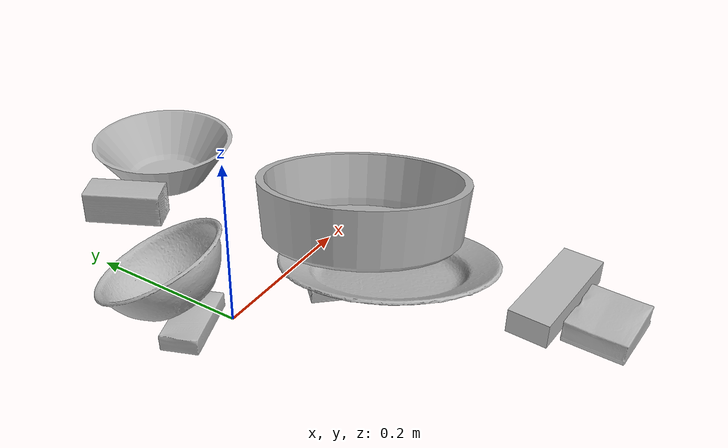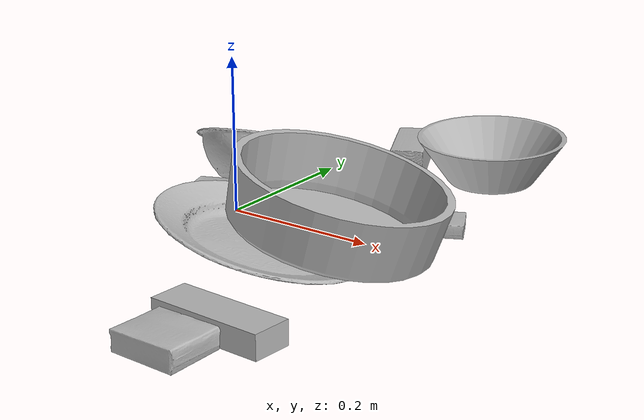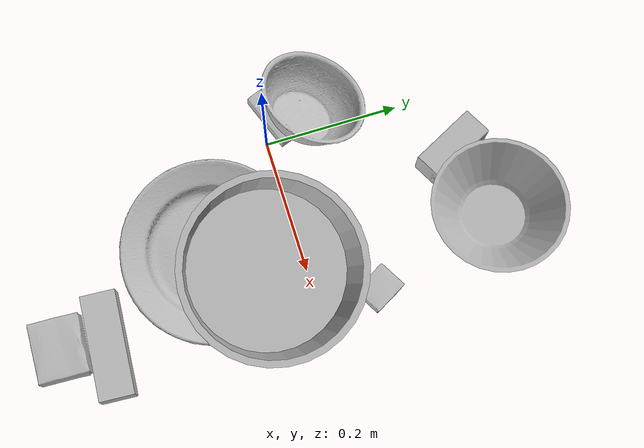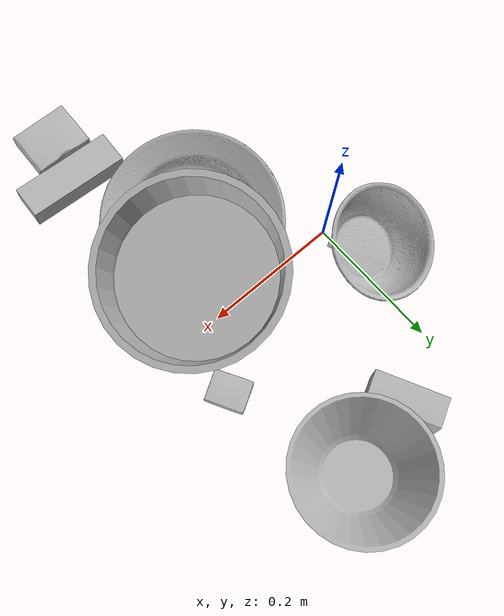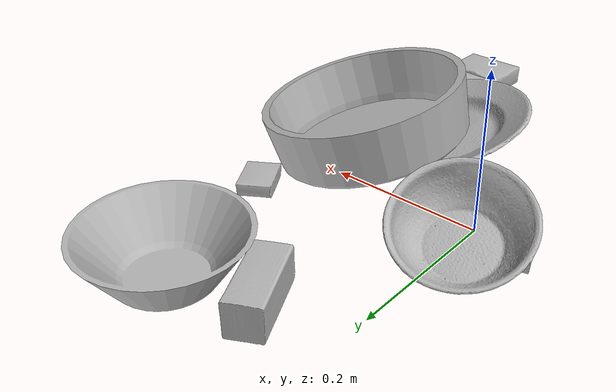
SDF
<sdf version="1.4">
  <world name="default">
    <light name="light1" type="point">
      <pose>0 0 1 0 0 0</pose>
      <diffuse>3 3 3 1</diffuse>
      <specular>3 3 3 1</specular>
    </light>
    <light name="light2" type="point">
      <pose>0 0.5 2 0 0 0</pose>
      <diffuse>1 1 1 1</diffuse>
      <specular>1 1 1 1</specular>
    </light>
    <light name="light3" type="point">
      <pose>0 0.5 2 0 0 0</pose>
      <diffuse>3 3 3 1</diffuse>
      <specular>3 3 3 1</specular>
    </light>
    <scene>
      <ambient>0.7 0.7 0.7</ambient>
    </scene>
    <model name="box1">
      <link name="link_box1">
        <collision name="default">
          <geometry>
            <mesh>
              <uri>model://jenga/collision_meshes/collision.obj</uri>
              <scale>1.0 1.0 1.0</scale>
            </mesh>
          </geometry>
          <surface>
            <friction>
              <ode>
                <mu>0.5</mu>
                <mu2>0.5</mu2>
              </ode>
            </friction>
          <contact>
        <ode>
            <max_vel>0</max_vel>
            <min_depth>0.0001</min_depth>
            <kp>1e8</kp>
        </ode>
    </contact></surface>
        </collision>
        <visual name="default">
          <geometry>
            <mesh>
              <uri>model://jenga/visual_meshes/visual.dae</uri>
              <scale>1.0 1.0 1.0</scale>
            </mesh>
          </geometry>
        </visual>
        <inertial>
          <mass>0.24226053059101105</mass>
          <pose>-2.502855807051674e-07 -0.0001025000965455547 -4.092339804628864e-05 0.0 -7.34215461761844e-07 0.0</pose>
          <inertia>
            <ixx>6.703936e-05</ixx>
            <iyy>0.0004542569</iyy>
            <izz>0.00048495785</izz>
            <ixy>0</ixy>
            <ixz>0</ixz>
            <iyz>0</iyz>
          </inertia>
        </inertial>
      </link>
      <pose>0.22472825646400452 -0.29632213711738586 0.014999997802078724 2.2484389591742613e-08 3.297395217813727e-09 3.0810055212108933</pose>
    </model>
    <model name="box11">
      <link name="link_box11">
        <collision name="default">
          <geometry>
            <mesh>
              <uri>model://sugar_box/collision_meshes/collision.obj</uri>
              <scale>0.5 0.5 0.5</scale>
            </mesh>
          </geometry>
          <surface>
            <friction>
              <ode>
                <mu>0.5</mu>
                <mu2>0.5</mu2>
              </ode>
            </friction>
          <contact>
        <ode>
            <max_vel>0</max_vel>
            <min_depth>0.0001</min_depth>
            <kp>1e8</kp>
        </ode>
    </contact></surface>
        </collision>
        <visual name="default">
          <geometry>
            <mesh>
              <uri>model://sugar_box/visual_meshes/visual.dae</uri>
              <scale>0.5 0.5 0.5</scale>
            </mesh>
          </geometry>
        </visual>
        <inertial>
          <mass>0.06204606965184212</mass>
          <pose>0.0005171863595023751 1.9245549992774613e-05 -0.00018182402709499002 -0.0004046263588767038 0.0010506634057764815 0.0026153785560837986</pose>
          <inertia>
            <ixx>1.2924152e-05</ixx>
            <iyy>4.1773517e-05</iyy>
            <izz>5.0007893e-05</izz>
            <ixy>0</ixy>
            <ixz>0</ixz>
            <iyz>0</iyz>
          </inertia>
        </inertial>
      </link>
      <pose>-0.03758595138788223 0.026692064478993416 0.011448324657976627 -0.025340878906622465 -0.012422409005348915 0.34354963422694357</pose>
    </model>
    <model name="box2">
      <link name="link_box2">
        <collision name="default">
          <geometry>
            <mesh>
              <uri>model://gelatin_box/collision_meshes/collision.obj</uri>
              <scale>1.0 1.0 1.0</scale>
            </mesh>
          </geometry>
          <surface>
            <friction>
              <ode>
                <mu>0.5</mu>
                <mu2>0.5</mu2>
              </ode>
            </friction>
          <contact>
        <ode>
            <max_vel>0</max_vel>
            <min_depth>0.0001</min_depth>
            <kp>1e8</kp>
        </ode>
    </contact></surface>
        </collision>
        <visual name="default">
          <geometry>
            <mesh>
              <uri>model://gelatin_box/visual_meshes/visual.dae</uri>
              <scale>1.0 1.0 1.0</scale>
            </mesh>
          </geometry>
        </visual>
        <inertial>
          <mass>0.13706544041633606</mass>
          <pose>0.000431961816502735 0.00011156871187267825 -0.0003640321083366871 -0.0010503719975702072 -0.0047558196187974565 0.01644056506069309</pose>
          <inertia>
            <ixx>9.675702e-05</ixx>
            <iyy>6.911303e-05</iyy>
            <izz>0.00014728573</izz>
            <ixy>0</ixy>
            <ixz>0</ixz>
            <iyz>0</iyz>
          </inertia>
        </inertial>
      </link>
      <pose>0.20929557085037231 -0.3623470664024353 0.01516831386834383 0.005597475282410152 -0.007304559306427474 1.5245077934869364</pose>
    </model>
    <model name="box21">
      <link name="link_box21">
        <collision name="default">
          <geometry>
            <mesh>
              <uri>model://pudding_box/collision_meshes/collision.obj</uri>
              <scale>0.5 0.5 0.5</scale>
            </mesh>
          </geometry>
          <surface>
            <friction>
              <ode>
                <mu>0.5</mu>
                <mu2>0.5</mu2>
              </ode>
            </friction>
          <contact>
        <ode>
            <max_vel>0</max_vel>
            <min_depth>0.0001</min_depth>
            <kp>1e8</kp>
        </ode>
    </contact></surface>
        </collision>
        <visual name="default">
          <geometry>
            <mesh>
              <uri>model://pudding_box/visual_meshes/visual.dae</uri>
              <scale>0.5 0.5 0.5</scale>
            </mesh>
          </geometry>
        </visual>
        <inertial>
          <mass>0.041178666055202484</mass>
          <pose>0.00024474109522998333 0.00040339428232982755 -0.00025944141088984907 0.005213101335872514 -0.006603799630434185 0.020079819569992066</pose>
          <inertia>
            <ixx>1.163759e-05</ixx>
            <iyy>7.8298535e-06</iyy>
            <izz>1.7185945e-05</izz>
            <ixy>0</ixy>
            <ixz>0</ixz>
            <iyz>0</iyz>
          </inertia>
        </inertial>
      </link>
      <pose>0.2572042644023895 0.0908311977982521 0.009862902574241161 0.022348725103125192 -0.011391559543945782 -2.622570440853679</pose>
    </model>
    <model name="box3">
      <link name="link_box3">
        <collision name="default">
          <geometry>
            <mesh>
              <uri>model://cracker_box/collision_meshes/collision.obj</uri>
              <scale>0.25 0.25 0.25</scale>
            </mesh>
          </geometry>
          <surface>
            <friction>
              <ode>
                <mu>0.5</mu>
                <mu2>0.5</mu2>
              </ode>
            </friction>
          <contact>
        <ode>
            <max_vel>0</max_vel>
            <min_depth>0.0001</min_depth>
            <kp>1e8</kp>
        </ode>
    </contact></surface>
        </collision>
        <visual name="default">
          <geometry>
            <mesh>
              <uri>model://cracker_box/visual_meshes/visual.dae</uri>
              <scale>0.25 0.25 0.25</scale>
            </mesh>
          </geometry>
        </visual>
        <inertial>
          <mass>0.02017100155353546</mass>
          <pose>0.00023660367878619581 6.358561222441494e-05 -0.00042573839891701937 -0.0003162077973682912 -0.011106487737506417 0.0025467945369474112</pose>
          <inertia>
            <ixx>3.2066264e-06</ixx>
            <iyy>5.2947703e-06</iyy>
            <izz>7.556123e-06</izz>
            <ixy>0</ixy>
            <ixz>0</ixz>
            <iyz>0</iyz>
          </inertia>
        </inertial>
      </link>
      <pose>0.10379170626401901 -0.06448103487491608 0.009229437448084354 0.010046772010913552 -0.006494210778686469 2.338641282360959</pose>
    </model>
    <model name="box31">
      <link name="link_box31">
        <collision name="default">
          <geometry>
            <mesh>
              <uri>model://wood_block/collision_meshes/collision.obj</uri>
              <scale>0.5 0.5 0.5</scale>
            </mesh>
          </geometry>
          <surface>
            <friction>
              <ode>
                <mu>0.5</mu>
                <mu2>0.5</mu2>
              </ode>
            </friction>
          <contact>
        <ode>
            <max_vel>0</max_vel>
            <min_depth>0.0001</min_depth>
            <kp>1e8</kp>
        </ode>
    </contact></surface>
        </collision>
        <visual name="default">
          <geometry>
            <mesh>
              <uri>model://wood_block/visual_meshes/visual.dae</uri>
              <scale>0.5 0.5 0.5</scale>
            </mesh>
          </geometry>
        </visual>
        <inertial>
          <mass>0.1962708830833435</mass>
          <pose>-2.9066577553749084e-06 -0.000285404734313488 0.00013204291462898254 -0.05220969561834339 -0.0051926963065425085 -0.006861379449261536</pose>
          <inertia>
            <ixx>6.566003e-05</ixx>
            <iyy>0.00020742005</iyy>
            <izz>0.00020664421</izz>
            <ixy>0</ixy>
            <ixz>0</ixz>
            <iyz>0</iyz>
          </inertia>
        </inertial>
      </link>
      <pose>0.09321241080760956 0.2540641129016876 0.022629277780652046 -0.0052083607729059905 0.005718744680031001 -1.0946054083836776</pose>
    </model>
    <model name="plate1">
      <link name="link_plate1">
        <collision name="default">
          <geometry>
            <mesh>
              <uri>model://plate/collision_meshes/collision.obj</uri>
              <scale>1.0 1.0 1.0</scale>
            </mesh>
          </geometry>
          <surface>
            <friction>
              <ode>
                <mu>0.5</mu>
                <mu2>0.5</mu2>
              </ode>
            </friction>
          <contact>
        <ode>
            <max_vel>0</max_vel>
            <min_depth>0.0001</min_depth>
            <kp>1e8</kp>
        </ode>
    </contact></surface>
        </collision>
        <visual name="default">
          <geometry>
            <mesh>
              <uri>model://plate/visual_meshes/visual.dae</uri>
              <scale>1.0 1.0 1.0</scale>
            </mesh>
          </geometry>
        </visual>
        <inertial>
          <mass>0.17345036566257477</mass>
          <pose>-0.0006044625188224018 0.00027825802681036294 -0.0010561991948634386 0.0022187574415082918 -0.0032254973035065115 0.4526175972404713</pose>
          <inertia>
            <ixx>0.00081140426</ixx>
            <iyy>0.0008036436</iyy>
            <izz>0.0015869853</izz>
            <ixy>0</ixy>
            <ixz>0</ixz>
            <iyz>0</iyz>
          </inertia>
        </inertial>
      </link>
      <pose>0.14242912828922272 -0.12086919695138931 0.034063249826431274 0.2547690850218972 0.049122498256464295 1.932474123634643</pose>
    </model>
    <model name="bowl1">
      <link name="link_bowl1">
        <collision name="default">
          <geometry>
            <mesh>
              <uri>model://bowl/collision_meshes/collision.obj</uri>
              <scale>1.0 1.0 1.0</scale>
            </mesh>
          </geometry>
          <surface>
            <friction>
              <ode>
                <mu>0.5</mu>
                <mu2>0.5</mu2>
              </ode>
            </friction>
          <contact>
        <ode>
            <max_vel>0</max_vel>
            <min_depth>0.0001</min_depth>
            <kp>1e8</kp>
        </ode>
    </contact></surface>
        </collision>
        <visual name="default">
          <geometry>
            <mesh>
              <uri>model://bowl/visual_meshes/visual.dae</uri>
              <scale>1.0 1.0 1.0</scale>
            </mesh>
          </geometry>
        </visual>
        <inertial>
          <mass>0.11633910983800888</mass>
          <pose>0.00020445004338398576 -0.0010302083101123571 -0.0008042659610509872 -0.01576420252076368 0.01454664289610389 0.7140315541596068</pose>
          <inertia>
            <ixx>0.0002672402</ixx>
            <iyy>0.000261269</iyy>
            <izz>0.00044958986</izz>
            <ixy>0</ixy>
            <ixz>0</ixz>
            <iyz>0</iyz>
          </inertia>
        </inertial>
      </link>
      <pose>-0.02327488735318184 0.0706130787730217 0.04441091790795326 -0.19131220406943167 -0.4137565173740115 -0.7703361845922191</pose>
    </model>
    <model name="plate2">
      <link name="link_plate2">
        <collision name="default">
          <geometry>
            <mesh>
              <uri>model://pan_tefal/collision_meshes/collision.obj</uri>
              <scale>1.0 1.0 1.0</scale>
            </mesh>
          </geometry>
          <surface>
            <friction>
              <ode>
                <mu>0.5</mu>
                <mu2>0.5</mu2>
              </ode>
            </friction>
          <contact>
        <ode>
            <max_vel>0</max_vel>
            <min_depth>0.0001</min_depth>
            <kp>1e8</kp>
        </ode>
    </contact></surface>
        </collision>
        <visual name="default">
          <geometry>
            <mesh>
              <uri>model://pan_tefal/visual_meshes/visual.dae</uri>
              <scale>1.0 1.0 1.0</scale>
            </mesh>
          </geometry>
        </visual>
        <inertial>
          <mass>0.6251956820487976</mass>
          <pose>-0.00018002417345996946 3.279016891610809e-05 -0.00851493515074253 0.0008190253681579672 -0.00033013925853852665 -0.331857454583129</pose>
          <inertia>
            <ixx>0.004315697</ixx>
            <iyy>0.00434352</iyy>
            <izz>0.007944365</izz>
            <ixy>0</ixy>
            <ixz>0</ixz>
            <iyz>0</iyz>
          </inertia>
        </inertial>
      </link>
      <pose>0.19709661602973938 -0.051410846412181854 0.0646587610244751 -0.10382540525478423 0.22885261841648183 0.06275561535445257</pose>
    </model>
    <model name="bowl2">
      <link name="link_bowl2">
        <collision name="default">
          <geometry>
            <mesh>
              <uri>model://bowl_a/collision_meshes/collision.obj</uri>
              <scale>1.0 1.0 1.0</scale>
            </mesh>
          </geometry>
          <surface>
            <friction>
              <ode>
                <mu>0.5</mu>
                <mu2>0.5</mu2>
              </ode>
            </friction>
          <contact>
        <ode>
            <max_vel>0</max_vel>
            <min_depth>0.0001</min_depth>
            <kp>1e8</kp>
        </ode>
    </contact></surface>
        </collision>
        <visual name="default">
          <geometry>
            <mesh>
              <uri>model://bowl_a/visual_meshes/visual.dae</uri>
              <scale>1.0 1.0 1.0</scale>
            </mesh>
          </geometry>
        </visual>
        <inertial>
          <mass>0.3434441387653351</mass>
          <pose>0.0002786742115858942 4.731103399535641e-05 -0.0013765294570475817 -0.000980532155977885 -0.0010938290454026757 -0.191241060811112</pose>
          <inertia>
            <ixx>0.0009778013</ixx>
            <iyy>0.0009838042</iyy>
            <izz>0.0017390571</izz>
            <ixy>0</ixy>
            <ixz>0</ixz>
            <iyz>0</iyz>
          </inertia>
        </inertial>
      </link>
      <pose>0.20170964300632477 0.2832995355129242 0.030382536351680756 -1.5037455736008429e-05 1.0170547010254959e-05 -0.23090133896397977</pose>
    </model>
  <physics type="ode">
      <max_contacts>50</max_contacts>
      <ode>
        <solver>
          <type>quick</type>
          <iters>75</iters>
        </solver>
        <constraints>
          <contact_max_correcting_vel>0</contact_max_correcting_vel>
          <contact_surface_layer>0</contact_surface_layer>
        </constraints>
      </ode>
    </physics></world>
</sdf>
